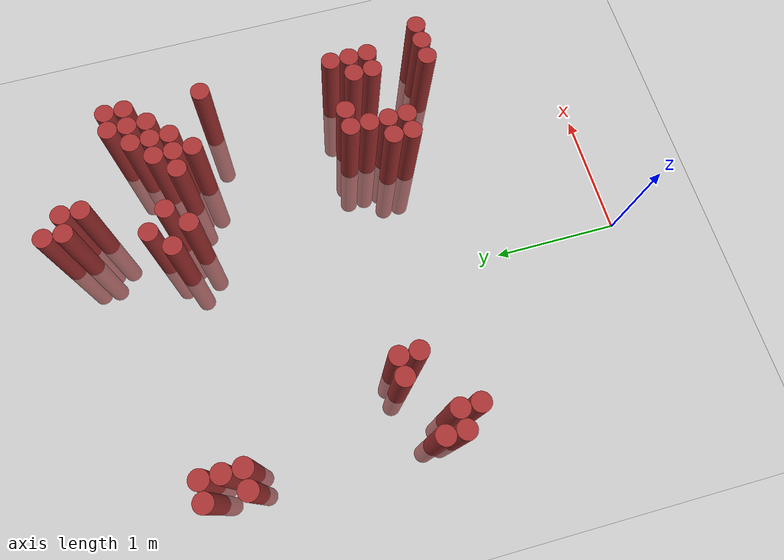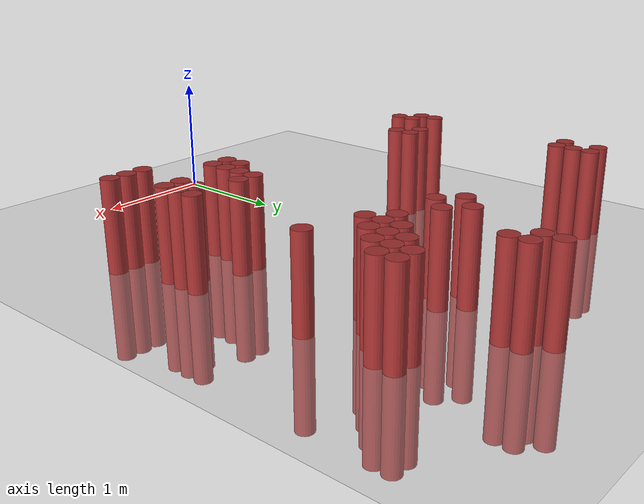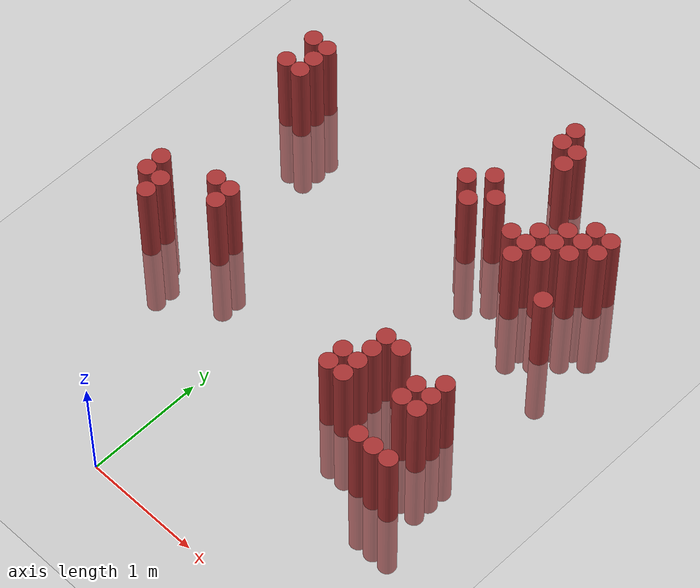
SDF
<sdf version="1.6">
 <world name="default">
  <model name="ground_plane">
   <static>1</static>
   <link name="link">
    <collision name="collision">
     <geometry><plane><normal>0 0 1</normal><size>100 100</size></plane></geometry>
     <surface><friction><ode><mu>100</mu><mu2>50</mu2></ode></friction></surface>
    </collision>
    <visual name="visual">
     <cast_shadows>0</cast_shadows>
     <geometry><plane><normal>0 0 1</normal><size>100 100</size></plane></geometry>
     <material>
      <script><uri>file://media/materials/scripts/gazebo.material</uri><name>Gazebo/Grey</name></script>
     </material>
    </visual>
   </link>
  </model>
  <model name="unit_cylinder_159">
   <static>1</static>
   <pose>-1.325000 1.825000 0.000000 0.000000 0.000000 0.000000</pose>
   <link name="link">
    <inertial>
     <mass>1</mass>
     <inertia><ixx>0.145833</ixx><ixy>0</ixy><ixz>0</ixz><iyy>0.145833</iyy><iyz>0</iyz><izz>0.125</izz></inertia>
    </inertial>
    <collision name="collision">
     <geometry><cylinder><radius>0.075000</radius><length>1.5</length></cylinder></geometry>
    </collision>
    <visual name="visual">
     <geometry><cylinder><radius>0.075000</radius><length>1.5</length></cylinder></geometry>
     <material>
      <ambient>0.648000 0.192000 0.192000 1</ambient>
      <diffuse>0.648000 0.192000 0.192000 1</diffuse>
     </material>
     <material>
      <script><name>Gazebo/Grey</name><uri>file://media/materials/scripts/gazebo.material</uri></script>
     </material>
    </visual>
   </link>
  </model>
  <model name="unit_cylinder_160">
   <static>1</static>
   <pose>-1.325000 1.975000 0.000000 0.000000 0.000000 0.000000</pose>
   <link name="link">
    <inertial>
     <mass>1</mass>
     <inertia><ixx>0.145833</ixx><ixy>0</ixy><ixz>0</ixz><iyy>0.145833</iyy><iyz>0</iyz><izz>0.125</izz></inertia>
    </inertial>
    <collision name="collision">
     <geometry><cylinder><radius>0.075000</radius><length>1.5</length></cylinder></geometry>
    </collision>
    <visual name="visual">
     <geometry><cylinder><radius>0.075000</radius><length>1.5</length></cylinder></geometry>
     <material>
      <ambient>0.648000 0.192000 0.192000 1</ambient>
      <diffuse>0.648000 0.192000 0.192000 1</diffuse>
     </material>
     <material>
      <script><name>Gazebo/Grey</name><uri>file://media/materials/scripts/gazebo.material</uri></script>
     </material>
    </visual>
   </link>
  </model>
  <model name="unit_cylinder_161">
   <static>1</static>
   <pose>-1.325000 3.325000 0.000000 0.000000 0.000000 0.000000</pose>
   <link name="link">
    <inertial>
     <mass>1</mass>
     <inertia><ixx>0.145833</ixx><ixy>0</ixy><ixz>0</ixz><iyy>0.145833</iyy><iyz>0</iyz><izz>0.125</izz></inertia>
    </inertial>
    <collision name="collision">
     <geometry><cylinder><radius>0.075000</radius><length>1.5</length></cylinder></geometry>
    </collision>
    <visual name="visual">
     <geometry><cylinder><radius>0.075000</radius><length>1.5</length></cylinder></geometry>
     <material>
      <ambient>0.648000 0.192000 0.192000 1</ambient>
      <diffuse>0.648000 0.192000 0.192000 1</diffuse>
     </material>
     <material>
      <script><name>Gazebo/Grey</name><uri>file://media/materials/scripts/gazebo.material</uri></script>
     </material>
    </visual>
   </link>
  </model>
  <model name="unit_cylinder_162">
   <static>1</static>
   <pose>-1.325000 3.625000 0.000000 0.000000 0.000000 0.000000</pose>
   <link name="link">
    <inertial>
     <mass>1</mass>
     <inertia><ixx>0.145833</ixx><ixy>0</ixy><ixz>0</ixz><iyy>0.145833</iyy><iyz>0</iyz><izz>0.125</izz></inertia>
    </inertial>
    <collision name="collision">
     <geometry><cylinder><radius>0.075000</radius><length>1.5</length></cylinder></geometry>
    </collision>
    <visual name="visual">
     <geometry><cylinder><radius>0.075000</radius><length>1.5</length></cylinder></geometry>
     <material>
      <ambient>0.648000 0.192000 0.192000 1</ambient>
      <diffuse>0.648000 0.192000 0.192000 1</diffuse>
     </material>
     <material>
      <script><name>Gazebo/Grey</name><uri>file://media/materials/scripts/gazebo.material</uri></script>
     </material>
    </visual>
   </link>
  </model>
  <model name="unit_cylinder_163">
   <static>1</static>
   <pose>-1.175000 1.675000 0.000000 0.000000 0.000000 0.000000</pose>
   <link name="link">
    <inertial>
     <mass>1</mass>
     <inertia><ixx>0.145833</ixx><ixy>0</ixy><ixz>0</ixz><iyy>0.145833</iyy><iyz>0</iyz><izz>0.125</izz></inertia>
    </inertial>
    <collision name="collision">
     <geometry><cylinder><radius>0.075000</radius><length>1.5</length></cylinder></geometry>
    </collision>
    <visual name="visual">
     <geometry><cylinder><radius>0.075000</radius><length>1.5</length></cylinder></geometry>
     <material>
      <ambient>0.648000 0.192000 0.192000 1</ambient>
      <diffuse>0.648000 0.192000 0.192000 1</diffuse>
     </material>
     <material>
      <script><name>Gazebo/Grey</name><uri>file://media/materials/scripts/gazebo.material</uri></script>
     </material>
    </visual>
   </link>
  </model>
  <model name="unit_cylinder_164">
   <static>1</static>
   <pose>-1.175000 1.825000 0.000000 0.000000 0.000000 0.000000</pose>
   <link name="link">
    <inertial>
     <mass>1</mass>
     <inertia><ixx>0.145833</ixx><ixy>0</ixy><ixz>0</ixz><iyy>0.145833</iyy><iyz>0</iyz><izz>0.125</izz></inertia>
    </inertial>
    <collision name="collision">
     <geometry><cylinder><radius>0.075000</radius><length>1.5</length></cylinder></geometry>
    </collision>
    <visual name="visual">
     <geometry><cylinder><radius>0.075000</radius><length>1.5</length></cylinder></geometry>
     <material>
      <ambient>0.648000 0.192000 0.192000 1</ambient>
      <diffuse>0.648000 0.192000 0.192000 1</diffuse>
     </material>
     <material>
      <script><name>Gazebo/Grey</name><uri>file://media/materials/scripts/gazebo.material</uri></script>
     </material>
    </visual>
   </link>
  </model>
  <model name="unit_cylinder_165">
   <static>1</static>
   <pose>-1.175000 3.325000 0.000000 0.000000 0.000000 0.000000</pose>
   <link name="link">
    <inertial>
     <mass>1</mass>
     <inertia><ixx>0.145833</ixx><ixy>0</ixy><ixz>0</ixz><iyy>0.145833</iyy><iyz>0</iyz><izz>0.125</izz></inertia>
    </inertial>
    <collision name="collision">
     <geometry><cylinder><radius>0.075000</radius><length>1.5</length></cylinder></geometry>
    </collision>
    <visual name="visual">
     <geometry><cylinder><radius>0.075000</radius><length>1.5</length></cylinder></geometry>
     <material>
      <ambient>0.648000 0.192000 0.192000 1</ambient>
      <diffuse>0.648000 0.192000 0.192000 1</diffuse>
     </material>
     <material>
      <script><name>Gazebo/Grey</name><uri>file://media/materials/scripts/gazebo.material</uri></script>
     </material>
    </visual>
   </link>
  </model>
  <model name="unit_cylinder_166">
   <static>1</static>
   <pose>-1.175000 3.475000 0.000000 0.000000 0.000000 0.000000</pose>
   <link name="link">
    <inertial>
     <mass>1</mass>
     <inertia><ixx>0.145833</ixx><ixy>0</ixy><ixz>0</ixz><iyy>0.145833</iyy><iyz>0</iyz><izz>0.125</izz></inertia>
    </inertial>
    <collision name="collision">
     <geometry><cylinder><radius>0.075000</radius><length>1.5</length></cylinder></geometry>
    </collision>
    <visual name="visual">
     <geometry><cylinder><radius>0.075000</radius><length>1.5</length></cylinder></geometry>
     <material>
      <ambient>0.648000 0.192000 0.192000 1</ambient>
      <diffuse>0.648000 0.192000 0.192000 1</diffuse>
     </material>
     <material>
      <script><name>Gazebo/Grey</name><uri>file://media/materials/scripts/gazebo.material</uri></script>
     </material>
    </visual>
   </link>
  </model>
  <model name="unit_cylinder_167">
   <static>1</static>
   <pose>-1.175000 3.625000 0.000000 0.000000 0.000000 0.000000</pose>
   <link name="link">
    <inertial>
     <mass>1</mass>
     <inertia><ixx>0.145833</ixx><ixy>0</ixy><ixz>0</ixz><iyy>0.145833</iyy><iyz>0</iyz><izz>0.125</izz></inertia>
    </inertial>
    <collision name="collision">
     <geometry><cylinder><radius>0.075000</radius><length>1.5</length></cylinder></geometry>
    </collision>
    <visual name="visual">
     <geometry><cylinder><radius>0.075000</radius><length>1.5</length></cylinder></geometry>
     <material>
      <ambient>0.648000 0.192000 0.192000 1</ambient>
      <diffuse>0.648000 0.192000 0.192000 1</diffuse>
     </material>
     <material>
      <script><name>Gazebo/Grey</name><uri>file://media/materials/scripts/gazebo.material</uri></script>
     </material>
    </visual>
   </link>
  </model>
  <model name="unit_cylinder_170">
   <static>1</static>
   <pose>-0.875000 2.125000 0.000000 0.000000 0.000000 0.000000</pose>
   <link name="link">
    <inertial>
     <mass>1</mass>
     <inertia><ixx>0.145833</ixx><ixy>0</ixy><ixz>0</ixz><iyy>0.145833</iyy><iyz>0</iyz><izz>0.125</izz></inertia>
    </inertial>
    <collision name="collision">
     <geometry><cylinder><radius>0.075000</radius><length>1.5</length></cylinder></geometry>
    </collision>
    <visual name="visual">
     <geometry><cylinder><radius>0.075000</radius><length>1.5</length></cylinder></geometry>
     <material>
      <ambient>0.648000 0.192000 0.192000 1</ambient>
      <diffuse>0.648000 0.192000 0.192000 1</diffuse>
     </material>
     <material>
      <script><name>Gazebo/Grey</name><uri>file://media/materials/scripts/gazebo.material</uri></script>
     </material>
    </visual>
   </link>
  </model>
  <model name="unit_cylinder_173">
   <static>1</static>
   <pose>-0.725000 1.975000 0.000000 0.000000 0.000000 0.000000</pose>
   <link name="link">
    <inertial>
     <mass>1</mass>
     <inertia><ixx>0.145833</ixx><ixy>0</ixy><ixz>0</ixz><iyy>0.145833</iyy><iyz>0</iyz><izz>0.125</izz></inertia>
    </inertial>
    <collision name="collision">
     <geometry><cylinder><radius>0.075000</radius><length>1.5</length></cylinder></geometry>
    </collision>
    <visual name="visual">
     <geometry><cylinder><radius>0.075000</radius><length>1.5</length></cylinder></geometry>
     <material>
      <ambient>0.648000 0.192000 0.192000 1</ambient>
      <diffuse>0.648000 0.192000 0.192000 1</diffuse>
     </material>
     <material>
      <script><name>Gazebo/Grey</name><uri>file://media/materials/scripts/gazebo.material</uri></script>
     </material>
    </visual>
   </link>
  </model>
  <model name="unit_cylinder_174">
   <static>1</static>
   <pose>-0.725000 2.125000 0.000000 0.000000 0.000000 0.000000</pose>
   <link name="link">
    <inertial>
     <mass>1</mass>
     <inertia><ixx>0.145833</ixx><ixy>0</ixy><ixz>0</ixz><iyy>0.145833</iyy><iyz>0</iyz><izz>0.125</izz></inertia>
    </inertial>
    <collision name="collision">
     <geometry><cylinder><radius>0.075000</radius><length>1.5</length></cylinder></geometry>
    </collision>
    <visual name="visual">
     <geometry><cylinder><radius>0.075000</radius><length>1.5</length></cylinder></geometry>
     <material>
      <ambient>0.648000 0.192000 0.192000 1</ambient>
      <diffuse>0.648000 0.192000 0.192000 1</diffuse>
     </material>
     <material>
      <script><name>Gazebo/Grey</name><uri>file://media/materials/scripts/gazebo.material</uri></script>
     </material>
    </visual>
   </link>
  </model>
  <model name="unit_cylinder_175">
   <static>1</static>
   <pose>0.475000 3.475000 0.000000 0.000000 0.000000 0.000000</pose>
   <link name="link">
    <inertial>
     <mass>1</mass>
     <inertia><ixx>0.145833</ixx><ixy>0</ixy><ixz>0</ixz><iyy>0.145833</iyy><iyz>0</iyz><izz>0.125</izz></inertia>
    </inertial>
    <collision name="collision">
     <geometry><cylinder><radius>0.075000</radius><length>1.5</length></cylinder></geometry>
    </collision>
    <visual name="visual">
     <geometry><cylinder><radius>0.075000</radius><length>1.5</length></cylinder></geometry>
     <material>
      <ambient>0.648000 0.192000 0.192000 1</ambient>
      <diffuse>0.648000 0.192000 0.192000 1</diffuse>
     </material>
     <material>
      <script><name>Gazebo/Grey</name><uri>file://media/materials/scripts/gazebo.material</uri></script>
     </material>
    </visual>
   </link>
  </model>
  <model name="unit_cylinder_176">
   <static>1</static>
   <pose>0.625000 3.325000 0.000000 0.000000 0.000000 0.000000</pose>
   <link name="link">
    <inertial>
     <mass>1</mass>
     <inertia><ixx>0.145833</ixx><ixy>0</ixy><ixz>0</ixz><iyy>0.145833</iyy><iyz>0</iyz><izz>0.125</izz></inertia>
    </inertial>
    <collision name="collision">
     <geometry><cylinder><radius>0.075000</radius><length>1.5</length></cylinder></geometry>
    </collision>
    <visual name="visual">
     <geometry><cylinder><radius>0.075000</radius><length>1.5</length></cylinder></geometry>
     <material>
      <ambient>0.648000 0.192000 0.192000 1</ambient>
      <diffuse>0.648000 0.192000 0.192000 1</diffuse>
     </material>
     <material>
      <script><name>Gazebo/Grey</name><uri>file://media/materials/scripts/gazebo.material</uri></script>
     </material>
    </visual>
   </link>
  </model>
  <model name="unit_cylinder_177">
   <static>1</static>
   <pose>0.625000 3.625000 0.000000 0.000000 0.000000 0.000000</pose>
   <link name="link">
    <inertial>
     <mass>1</mass>
     <inertia><ixx>0.145833</ixx><ixy>0</ixy><ixz>0</ixz><iyy>0.145833</iyy><iyz>0</iyz><izz>0.125</izz></inertia>
    </inertial>
    <collision name="collision">
     <geometry><cylinder><radius>0.075000</radius><length>1.5</length></cylinder></geometry>
    </collision>
    <visual name="visual">
     <geometry><cylinder><radius>0.075000</radius><length>1.5</length></cylinder></geometry>
     <material>
      <ambient>0.648000 0.192000 0.192000 1</ambient>
      <diffuse>0.648000 0.192000 0.192000 1</diffuse>
     </material>
     <material>
      <script><name>Gazebo/Grey</name><uri>file://media/materials/scripts/gazebo.material</uri></script>
     </material>
    </visual>
   </link>
  </model>
  <model name="unit_cylinder_180">
   <static>1</static>
   <pose>0.775000 3.475000 0.000000 0.000000 0.000000 0.000000</pose>
   <link name="link">
    <inertial>
     <mass>1</mass>
     <inertia><ixx>0.145833</ixx><ixy>0</ixy><ixz>0</ixz><iyy>0.145833</iyy><iyz>0</iyz><izz>0.125</izz></inertia>
    </inertial>
    <collision name="collision">
     <geometry><cylinder><radius>0.075000</radius><length>1.5</length></cylinder></geometry>
    </collision>
    <visual name="visual">
     <geometry><cylinder><radius>0.075000</radius><length>1.5</length></cylinder></geometry>
     <material>
      <ambient>0.648000 0.192000 0.192000 1</ambient>
      <diffuse>0.648000 0.192000 0.192000 1</diffuse>
     </material>
     <material>
      <script><name>Gazebo/Grey</name><uri>file://media/materials/scripts/gazebo.material</uri></script>
     </material>
    </visual>
   </link>
  </model>
  <model name="unit_cylinder_181">
   <static>1</static>
   <pose>0.775000 4.225000 0.000000 0.000000 0.000000 0.000000</pose>
   <link name="link">
    <inertial>
     <mass>1</mass>
     <inertia><ixx>0.145833</ixx><ixy>0</ixy><ixz>0</ixz><iyy>0.145833</iyy><iyz>0</iyz><izz>0.125</izz></inertia>
    </inertial>
    <collision name="collision">
     <geometry><cylinder><radius>0.075000</radius><length>1.5</length></cylinder></geometry>
    </collision>
    <visual name="visual">
     <geometry><cylinder><radius>0.075000</radius><length>1.5</length></cylinder></geometry>
     <material>
      <ambient>0.648000 0.192000 0.192000 1</ambient>
      <diffuse>0.648000 0.192000 0.192000 1</diffuse>
     </material>
     <material>
      <script><name>Gazebo/Grey</name><uri>file://media/materials/scripts/gazebo.material</uri></script>
     </material>
    </visual>
   </link>
  </model>
  <model name="unit_cylinder_182">
   <static>1</static>
   <pose>0.775000 4.375000 0.000000 0.000000 0.000000 0.000000</pose>
   <link name="link">
    <inertial>
     <mass>1</mass>
     <inertia><ixx>0.145833</ixx><ixy>0</ixy><ixz>0</ixz><iyy>0.145833</iyy><iyz>0</iyz><izz>0.125</izz></inertia>
    </inertial>
    <collision name="collision">
     <geometry><cylinder><radius>0.075000</radius><length>1.5</length></cylinder></geometry>
    </collision>
    <visual name="visual">
     <geometry><cylinder><radius>0.075000</radius><length>1.5</length></cylinder></geometry>
     <material>
      <ambient>0.648000 0.192000 0.192000 1</ambient>
      <diffuse>0.648000 0.192000 0.192000 1</diffuse>
     </material>
     <material>
      <script><name>Gazebo/Grey</name><uri>file://media/materials/scripts/gazebo.material</uri></script>
     </material>
    </visual>
   </link>
  </model>
  <model name="unit_cylinder_187">
   <static>1</static>
   <pose>0.925000 1.525000 0.000000 0.000000 0.000000 0.000000</pose>
   <link name="link">
    <inertial>
     <mass>1</mass>
     <inertia><ixx>0.145833</ixx><ixy>0</ixy><ixz>0</ixz><iyy>0.145833</iyy><iyz>0</iyz><izz>0.125</izz></inertia>
    </inertial>
    <collision name="collision">
     <geometry><cylinder><radius>0.075000</radius><length>1.5</length></cylinder></geometry>
    </collision>
    <visual name="visual">
     <geometry><cylinder><radius>0.075000</radius><length>1.5</length></cylinder></geometry>
     <material>
      <ambient>0.648000 0.192000 0.192000 1</ambient>
      <diffuse>0.648000 0.192000 0.192000 1</diffuse>
     </material>
     <material>
      <script><name>Gazebo/Grey</name><uri>file://media/materials/scripts/gazebo.material</uri></script>
     </material>
    </visual>
   </link>
  </model>
  <model name="unit_cylinder_188">
   <static>1</static>
   <pose>0.925000 1.675000 0.000000 0.000000 0.000000 0.000000</pose>
   <link name="link">
    <inertial>
     <mass>1</mass>
     <inertia><ixx>0.145833</ixx><ixy>0</ixy><ixz>0</ixz><iyy>0.145833</iyy><iyz>0</iyz><izz>0.125</izz></inertia>
    </inertial>
    <collision name="collision">
     <geometry><cylinder><radius>0.075000</radius><length>1.5</length></cylinder></geometry>
    </collision>
    <visual name="visual">
     <geometry><cylinder><radius>0.075000</radius><length>1.5</length></cylinder></geometry>
     <material>
      <ambient>0.648000 0.192000 0.192000 1</ambient>
      <diffuse>0.648000 0.192000 0.192000 1</diffuse>
     </material>
     <material>
      <script><name>Gazebo/Grey</name><uri>file://media/materials/scripts/gazebo.material</uri></script>
     </material>
    </visual>
   </link>
  </model>
  <model name="unit_cylinder_189">
   <static>1</static>
   <pose>0.925000 4.075000 0.000000 0.000000 0.000000 0.000000</pose>
   <link name="link">
    <inertial>
     <mass>1</mass>
     <inertia><ixx>0.145833</ixx><ixy>0</ixy><ixz>0</ixz><iyy>0.145833</iyy><iyz>0</iyz><izz>0.125</izz></inertia>
    </inertial>
    <collision name="collision">
     <geometry><cylinder><radius>0.075000</radius><length>1.5</length></cylinder></geometry>
    </collision>
    <visual name="visual">
     <geometry><cylinder><radius>0.075000</radius><length>1.5</length></cylinder></geometry>
     <material>
      <ambient>0.648000 0.192000 0.192000 1</ambient>
      <diffuse>0.648000 0.192000 0.192000 1</diffuse>
     </material>
     <material>
      <script><name>Gazebo/Grey</name><uri>file://media/materials/scripts/gazebo.material</uri></script>
     </material>
    </visual>
   </link>
  </model>
  <model name="unit_cylinder_190">
   <static>1</static>
   <pose>0.925000 4.225000 0.000000 0.000000 0.000000 0.000000</pose>
   <link name="link">
    <inertial>
     <mass>1</mass>
     <inertia><ixx>0.145833</ixx><ixy>0</ixy><ixz>0</ixz><iyy>0.145833</iyy><iyz>0</iyz><izz>0.125</izz></inertia>
    </inertial>
    <collision name="collision">
     <geometry><cylinder><radius>0.075000</radius><length>1.5</length></cylinder></geometry>
    </collision>
    <visual name="visual">
     <geometry><cylinder><radius>0.075000</radius><length>1.5</length></cylinder></geometry>
     <material>
      <ambient>0.648000 0.192000 0.192000 1</ambient>
      <diffuse>0.648000 0.192000 0.192000 1</diffuse>
     </material>
     <material>
      <script><name>Gazebo/Grey</name><uri>file://media/materials/scripts/gazebo.material</uri></script>
     </material>
    </visual>
   </link>
  </model>
  <model name="unit_cylinder_194">
   <static>1</static>
   <pose>1.075000 1.525000 0.000000 0.000000 0.000000 0.000000</pose>
   <link name="link">
    <inertial>
     <mass>1</mass>
     <inertia><ixx>0.145833</ixx><ixy>0</ixy><ixz>0</ixz><iyy>0.145833</iyy><iyz>0</iyz><izz>0.125</izz></inertia>
    </inertial>
    <collision name="collision">
     <geometry><cylinder><radius>0.075000</radius><length>1.5</length></cylinder></geometry>
    </collision>
    <visual name="visual">
     <geometry><cylinder><radius>0.075000</radius><length>1.5</length></cylinder></geometry>
     <material>
      <ambient>0.648000 0.192000 0.192000 1</ambient>
      <diffuse>0.648000 0.192000 0.192000 1</diffuse>
     </material>
     <material>
      <script><name>Gazebo/Grey</name><uri>file://media/materials/scripts/gazebo.material</uri></script>
     </material>
    </visual>
   </link>
  </model>
  <model name="unit_cylinder_195">
   <static>1</static>
   <pose>1.075000 1.675000 0.000000 0.000000 0.000000 0.000000</pose>
   <link name="link">
    <inertial>
     <mass>1</mass>
     <inertia><ixx>0.145833</ixx><ixy>0</ixy><ixz>0</ixz><iyy>0.145833</iyy><iyz>0</iyz><izz>0.125</izz></inertia>
    </inertial>
    <collision name="collision">
     <geometry><cylinder><radius>0.075000</radius><length>1.5</length></cylinder></geometry>
    </collision>
    <visual name="visual">
     <geometry><cylinder><radius>0.075000</radius><length>1.5</length></cylinder></geometry>
     <material>
      <ambient>0.648000 0.192000 0.192000 1</ambient>
      <diffuse>0.648000 0.192000 0.192000 1</diffuse>
     </material>
     <material>
      <script><name>Gazebo/Grey</name><uri>file://media/materials/scripts/gazebo.material</uri></script>
     </material>
    </visual>
   </link>
  </model>
  <model name="unit_cylinder_196">
   <static>1</static>
   <pose>1.075000 1.825000 0.000000 0.000000 0.000000 0.000000</pose>
   <link name="link">
    <inertial>
     <mass>1</mass>
     <inertia><ixx>0.145833</ixx><ixy>0</ixy><ixz>0</ixz><iyy>0.145833</iyy><iyz>0</iyz><izz>0.125</izz></inertia>
    </inertial>
    <collision name="collision">
     <geometry><cylinder><radius>0.075000</radius><length>1.5</length></cylinder></geometry>
    </collision>
    <visual name="visual">
     <geometry><cylinder><radius>0.075000</radius><length>1.5</length></cylinder></geometry>
     <material>
      <ambient>0.648000 0.192000 0.192000 1</ambient>
      <diffuse>0.648000 0.192000 0.192000 1</diffuse>
     </material>
     <material>
      <script><name>Gazebo/Grey</name><uri>file://media/materials/scripts/gazebo.material</uri></script>
     </material>
    </visual>
   </link>
  </model>
  <model name="unit_cylinder_197">
   <static>1</static>
   <pose>1.075000 1.975000 0.000000 0.000000 0.000000 0.000000</pose>
   <link name="link">
    <inertial>
     <mass>1</mass>
     <inertia><ixx>0.145833</ixx><ixy>0</ixy><ixz>0</ixz><iyy>0.145833</iyy><iyz>0</iyz><izz>0.125</izz></inertia>
    </inertial>
    <collision name="collision">
     <geometry><cylinder><radius>0.075000</radius><length>1.5</length></cylinder></geometry>
    </collision>
    <visual name="visual">
     <geometry><cylinder><radius>0.075000</radius><length>1.5</length></cylinder></geometry>
     <material>
      <ambient>0.648000 0.192000 0.192000 1</ambient>
      <diffuse>0.648000 0.192000 0.192000 1</diffuse>
     </material>
     <material>
      <script><name>Gazebo/Grey</name><uri>file://media/materials/scripts/gazebo.material</uri></script>
     </material>
    </visual>
   </link>
  </model>
  <model name="unit_cylinder_198">
   <static>1</static>
   <pose>1.075000 3.325000 0.000000 0.000000 0.000000 0.000000</pose>
   <link name="link">
    <inertial>
     <mass>1</mass>
     <inertia><ixx>0.145833</ixx><ixy>0</ixy><ixz>0</ixz><iyy>0.145833</iyy><iyz>0</iyz><izz>0.125</izz></inertia>
    </inertial>
    <collision name="collision">
     <geometry><cylinder><radius>0.075000</radius><length>1.5</length></cylinder></geometry>
    </collision>
    <visual name="visual">
     <geometry><cylinder><radius>0.075000</radius><length>1.5</length></cylinder></geometry>
     <material>
      <ambient>0.648000 0.192000 0.192000 1</ambient>
      <diffuse>0.648000 0.192000 0.192000 1</diffuse>
     </material>
     <material>
      <script><name>Gazebo/Grey</name><uri>file://media/materials/scripts/gazebo.material</uri></script>
     </material>
    </visual>
   </link>
  </model>
  <model name="unit_cylinder_201">
   <static>1</static>
   <pose>1.225000 1.975000 0.000000 0.000000 0.000000 0.000000</pose>
   <link name="link">
    <inertial>
     <mass>1</mass>
     <inertia><ixx>0.145833</ixx><ixy>0</ixy><ixz>0</ixz><iyy>0.145833</iyy><iyz>0</iyz><izz>0.125</izz></inertia>
    </inertial>
    <collision name="collision">
     <geometry><cylinder><radius>0.075000</radius><length>1.5</length></cylinder></geometry>
    </collision>
    <visual name="visual">
     <geometry><cylinder><radius>0.075000</radius><length>1.5</length></cylinder></geometry>
     <material>
      <ambient>0.648000 0.192000 0.192000 1</ambient>
      <diffuse>0.648000 0.192000 0.192000 1</diffuse>
     </material>
     <material>
      <script><name>Gazebo/Grey</name><uri>file://media/materials/scripts/gazebo.material</uri></script>
     </material>
    </visual>
   </link>
  </model>
  <model name="unit_cylinder_202">
   <static>1</static>
   <pose>1.225000 3.175000 0.000000 0.000000 0.000000 0.000000</pose>
   <link name="link">
    <inertial>
     <mass>1</mass>
     <inertia><ixx>0.145833</ixx><ixy>0</ixy><ixz>0</ixz><iyy>0.145833</iyy><iyz>0</iyz><izz>0.125</izz></inertia>
    </inertial>
    <collision name="collision">
     <geometry><cylinder><radius>0.075000</radius><length>1.5</length></cylinder></geometry>
    </collision>
    <visual name="visual">
     <geometry><cylinder><radius>0.075000</radius><length>1.5</length></cylinder></geometry>
     <material>
      <ambient>0.648000 0.192000 0.192000 1</ambient>
      <diffuse>0.648000 0.192000 0.192000 1</diffuse>
     </material>
     <material>
      <script><name>Gazebo/Grey</name><uri>file://media/materials/scripts/gazebo.material</uri></script>
     </material>
    </visual>
   </link>
  </model>
  <model name="unit_cylinder_203">
   <static>1</static>
   <pose>1.225000 3.325000 0.000000 0.000000 0.000000 0.000000</pose>
   <link name="link">
    <inertial>
     <mass>1</mass>
     <inertia><ixx>0.145833</ixx><ixy>0</ixy><ixz>0</ixz><iyy>0.145833</iyy><iyz>0</iyz><izz>0.125</izz></inertia>
    </inertial>
    <collision name="collision">
     <geometry><cylinder><radius>0.075000</radius><length>1.5</length></cylinder></geometry>
    </collision>
    <visual name="visual">
     <geometry><cylinder><radius>0.075000</radius><length>1.5</length></cylinder></geometry>
     <material>
      <ambient>0.648000 0.192000 0.192000 1</ambient>
      <diffuse>0.648000 0.192000 0.192000 1</diffuse>
     </material>
     <material>
      <script><name>Gazebo/Grey</name><uri>file://media/materials/scripts/gazebo.material</uri></script>
     </material>
    </visual>
   </link>
  </model>
  <model name="unit_cylinder_204">
   <static>1</static>
   <pose>1.225000 3.475000 0.000000 0.000000 0.000000 0.000000</pose>
   <link name="link">
    <inertial>
     <mass>1</mass>
     <inertia><ixx>0.145833</ixx><ixy>0</ixy><ixz>0</ixz><iyy>0.145833</iyy><iyz>0</iyz><izz>0.125</izz></inertia>
    </inertial>
    <collision name="collision">
     <geometry><cylinder><radius>0.075000</radius><length>1.5</length></cylinder></geometry>
    </collision>
    <visual name="visual">
     <geometry><cylinder><radius>0.075000</radius><length>1.5</length></cylinder></geometry>
     <material>
      <ambient>0.648000 0.192000 0.192000 1</ambient>
      <diffuse>0.648000 0.192000 0.192000 1</diffuse>
     </material>
     <material>
      <script><name>Gazebo/Grey</name><uri>file://media/materials/scripts/gazebo.material</uri></script>
     </material>
    </visual>
   </link>
  </model>
  <model name="unit_cylinder_206">
   <static>1</static>
   <pose>1.375000 3.325000 0.000000 0.000000 0.000000 0.000000</pose>
   <link name="link">
    <inertial>
     <mass>1</mass>
     <inertia><ixx>0.145833</ixx><ixy>0</ixy><ixz>0</ixz><iyy>0.145833</iyy><iyz>0</iyz><izz>0.125</izz></inertia>
    </inertial>
    <collision name="collision">
     <geometry><cylinder><radius>0.075000</radius><length>1.5</length></cylinder></geometry>
    </collision>
    <visual name="visual">
     <geometry><cylinder><radius>0.075000</radius><length>1.5</length></cylinder></geometry>
     <material>
      <ambient>0.648000 0.192000 0.192000 1</ambient>
      <diffuse>0.648000 0.192000 0.192000 1</diffuse>
     </material>
     <material>
      <script><name>Gazebo/Grey</name><uri>file://media/materials/scripts/gazebo.material</uri></script>
     </material>
    </visual>
   </link>
  </model>
  <model name="unit_cylinder_207">
   <static>1</static>
   <pose>1.375000 3.475000 0.000000 0.000000 0.000000 0.000000</pose>
   <link name="link">
    <inertial>
     <mass>1</mass>
     <inertia><ixx>0.145833</ixx><ixy>0</ixy><ixz>0</ixz><iyy>0.145833</iyy><iyz>0</iyz><izz>0.125</izz></inertia>
    </inertial>
    <collision name="collision">
     <geometry><cylinder><radius>0.075000</radius><length>1.5</length></cylinder></geometry>
    </collision>
    <visual name="visual">
     <geometry><cylinder><radius>0.075000</radius><length>1.5</length></cylinder></geometry>
     <material>
      <ambient>0.648000 0.192000 0.192000 1</ambient>
      <diffuse>0.648000 0.192000 0.192000 1</diffuse>
     </material>
     <material>
      <script><name>Gazebo/Grey</name><uri>file://media/materials/scripts/gazebo.material</uri></script>
     </material>
    </visual>
   </link>
  </model>
  <model name="unit_cylinder_208">
   <static>1</static>
   <pose>1.375000 3.625000 0.000000 0.000000 0.000000 0.000000</pose>
   <link name="link">
    <inertial>
     <mass>1</mass>
     <inertia><ixx>0.145833</ixx><ixy>0</ixy><ixz>0</ixz><iyy>0.145833</iyy><iyz>0</iyz><izz>0.125</izz></inertia>
    </inertial>
    <collision name="collision">
     <geometry><cylinder><radius>0.075000</radius><length>1.5</length></cylinder></geometry>
    </collision>
    <visual name="visual">
     <geometry><cylinder><radius>0.075000</radius><length>1.5</length></cylinder></geometry>
     <material>
      <ambient>0.648000 0.192000 0.192000 1</ambient>
      <diffuse>0.648000 0.192000 0.192000 1</diffuse>
     </material>
     <material>
      <script><name>Gazebo/Grey</name><uri>file://media/materials/scripts/gazebo.material</uri></script>
     </material>
    </visual>
   </link>
  </model>
  <model name="unit_cylinder_210">
   <static>1</static>
   <pose>1.525000 1.225000 0.000000 0.000000 0.000000 0.000000</pose>
   <link name="link">
    <inertial>
     <mass>1</mass>
     <inertia><ixx>0.145833</ixx><ixy>0</ixy><ixz>0</ixz><iyy>0.145833</iyy><iyz>0</iyz><izz>0.125</izz></inertia>
    </inertial>
    <collision name="collision">
     <geometry><cylinder><radius>0.075000</radius><length>1.5</length></cylinder></geometry>
    </collision>
    <visual name="visual">
     <geometry><cylinder><radius>0.075000</radius><length>1.5</length></cylinder></geometry>
     <material>
      <ambient>0.648000 0.192000 0.192000 1</ambient>
      <diffuse>0.648000 0.192000 0.192000 1</diffuse>
     </material>
     <material>
      <script><name>Gazebo/Grey</name><uri>file://media/materials/scripts/gazebo.material</uri></script>
     </material>
    </visual>
   </link>
  </model>
  <model name="unit_cylinder_211">
   <static>1</static>
   <pose>1.525000 1.675000 0.000000 0.000000 0.000000 0.000000</pose>
   <link name="link">
    <inertial>
     <mass>1</mass>
     <inertia><ixx>0.145833</ixx><ixy>0</ixy><ixz>0</ixz><iyy>0.145833</iyy><iyz>0</iyz><izz>0.125</izz></inertia>
    </inertial>
    <collision name="collision">
     <geometry><cylinder><radius>0.075000</radius><length>1.5</length></cylinder></geometry>
    </collision>
    <visual name="visual">
     <geometry><cylinder><radius>0.075000</radius><length>1.5</length></cylinder></geometry>
     <material>
      <ambient>0.648000 0.192000 0.192000 1</ambient>
      <diffuse>0.648000 0.192000 0.192000 1</diffuse>
     </material>
     <material>
      <script><name>Gazebo/Grey</name><uri>file://media/materials/scripts/gazebo.material</uri></script>
     </material>
    </visual>
   </link>
  </model>
  <model name="unit_cylinder_212">
   <static>1</static>
   <pose>1.525000 1.825000 0.000000 0.000000 0.000000 0.000000</pose>
   <link name="link">
    <inertial>
     <mass>1</mass>
     <inertia><ixx>0.145833</ixx><ixy>0</ixy><ixz>0</ixz><iyy>0.145833</iyy><iyz>0</iyz><izz>0.125</izz></inertia>
    </inertial>
    <collision name="collision">
     <geometry><cylinder><radius>0.075000</radius><length>1.5</length></cylinder></geometry>
    </collision>
    <visual name="visual">
     <geometry><cylinder><radius>0.075000</radius><length>1.5</length></cylinder></geometry>
     <material>
      <ambient>0.648000 0.192000 0.192000 1</ambient>
      <diffuse>0.648000 0.192000 0.192000 1</diffuse>
     </material>
     <material>
      <script><name>Gazebo/Grey</name><uri>file://media/materials/scripts/gazebo.material</uri></script>
     </material>
    </visual>
   </link>
  </model>
  <model name="unit_cylinder_213">
   <static>1</static>
   <pose>1.525000 3.475000 0.000000 0.000000 0.000000 0.000000</pose>
   <link name="link">
    <inertial>
     <mass>1</mass>
     <inertia><ixx>0.145833</ixx><ixy>0</ixy><ixz>0</ixz><iyy>0.145833</iyy><iyz>0</iyz><izz>0.125</izz></inertia>
    </inertial>
    <collision name="collision">
     <geometry><cylinder><radius>0.075000</radius><length>1.5</length></cylinder></geometry>
    </collision>
    <visual name="visual">
     <geometry><cylinder><radius>0.075000</radius><length>1.5</length></cylinder></geometry>
     <material>
      <ambient>0.648000 0.192000 0.192000 1</ambient>
      <diffuse>0.648000 0.192000 0.192000 1</diffuse>
     </material>
     <material>
      <script><name>Gazebo/Grey</name><uri>file://media/materials/scripts/gazebo.material</uri></script>
     </material>
    </visual>
   </link>
  </model>
  <model name="unit_cylinder_214">
   <static>1</static>
   <pose>1.525000 3.625000 0.000000 0.000000 0.000000 0.000000</pose>
   <link name="link">
    <inertial>
     <mass>1</mass>
     <inertia><ixx>0.145833</ixx><ixy>0</ixy><ixz>0</ixz><iyy>0.145833</iyy><iyz>0</iyz><izz>0.125</izz></inertia>
    </inertial>
    <collision name="collision">
     <geometry><cylinder><radius>0.075000</radius><length>1.5</length></cylinder></geometry>
    </collision>
    <visual name="visual">
     <geometry><cylinder><radius>0.075000</radius><length>1.5</length></cylinder></geometry>
     <material>
      <ambient>0.648000 0.192000 0.192000 1</ambient>
      <diffuse>0.648000 0.192000 0.192000 1</diffuse>
     </material>
     <material>
      <script><name>Gazebo/Grey</name><uri>file://media/materials/scripts/gazebo.material</uri></script>
     </material>
    </visual>
   </link>
  </model>
  <model name="unit_cylinder_215">
   <static>1</static>
   <pose>1.525000 3.775000 0.000000 0.000000 0.000000 0.000000</pose>
   <link name="link">
    <inertial>
     <mass>1</mass>
     <inertia><ixx>0.145833</ixx><ixy>0</ixy><ixz>0</ixz><iyy>0.145833</iyy><iyz>0</iyz><izz>0.125</izz></inertia>
    </inertial>
    <collision name="collision">
     <geometry><cylinder><radius>0.075000</radius><length>1.5</length></cylinder></geometry>
    </collision>
    <visual name="visual">
     <geometry><cylinder><radius>0.075000</radius><length>1.5</length></cylinder></geometry>
     <material>
      <ambient>0.648000 0.192000 0.192000 1</ambient>
      <diffuse>0.648000 0.192000 0.192000 1</diffuse>
     </material>
     <material>
      <script><name>Gazebo/Grey</name><uri>file://media/materials/scripts/gazebo.material</uri></script>
     </material>
    </visual>
   </link>
  </model>
  <model name="unit_cylinder_218">
   <static>1</static>
   <pose>1.675000 1.225000 0.000000 0.000000 0.000000 0.000000</pose>
   <link name="link">
    <inertial>
     <mass>1</mass>
     <inertia><ixx>0.145833</ixx><ixy>0</ixy><ixz>0</ixz><iyy>0.145833</iyy><iyz>0</iyz><izz>0.125</izz></inertia>
    </inertial>
    <collision name="collision">
     <geometry><cylinder><radius>0.075000</radius><length>1.5</length></cylinder></geometry>
    </collision>
    <visual name="visual">
     <geometry><cylinder><radius>0.075000</radius><length>1.5</length></cylinder></geometry>
     <material>
      <ambient>0.648000 0.192000 0.192000 1</ambient>
      <diffuse>0.648000 0.192000 0.192000 1</diffuse>
     </material>
     <material>
      <script><name>Gazebo/Grey</name><uri>file://media/materials/scripts/gazebo.material</uri></script>
     </material>
    </visual>
   </link>
  </model>
  <model name="unit_cylinder_219">
   <static>1</static>
   <pose>1.675000 1.675000 0.000000 0.000000 0.000000 0.000000</pose>
   <link name="link">
    <inertial>
     <mass>1</mass>
     <inertia><ixx>0.145833</ixx><ixy>0</ixy><ixz>0</ixz><iyy>0.145833</iyy><iyz>0</iyz><izz>0.125</izz></inertia>
    </inertial>
    <collision name="collision">
     <geometry><cylinder><radius>0.075000</radius><length>1.5</length></cylinder></geometry>
    </collision>
    <visual name="visual">
     <geometry><cylinder><radius>0.075000</radius><length>1.5</length></cylinder></geometry>
     <material>
      <ambient>0.648000 0.192000 0.192000 1</ambient>
      <diffuse>0.648000 0.192000 0.192000 1</diffuse>
     </material>
     <material>
      <script><name>Gazebo/Grey</name><uri>file://media/materials/scripts/gazebo.material</uri></script>
     </material>
    </visual>
   </link>
  </model>
  <model name="unit_cylinder_220">
   <static>1</static>
   <pose>1.675000 1.825000 0.000000 0.000000 0.000000 0.000000</pose>
   <link name="link">
    <inertial>
     <mass>1</mass>
     <inertia><ixx>0.145833</ixx><ixy>0</ixy><ixz>0</ixz><iyy>0.145833</iyy><iyz>0</iyz><izz>0.125</izz></inertia>
    </inertial>
    <collision name="collision">
     <geometry><cylinder><radius>0.075000</radius><length>1.5</length></cylinder></geometry>
    </collision>
    <visual name="visual">
     <geometry><cylinder><radius>0.075000</radius><length>1.5</length></cylinder></geometry>
     <material>
      <ambient>0.648000 0.192000 0.192000 1</ambient>
      <diffuse>0.648000 0.192000 0.192000 1</diffuse>
     </material>
     <material>
      <script><name>Gazebo/Grey</name><uri>file://media/materials/scripts/gazebo.material</uri></script>
     </material>
    </visual>
   </link>
  </model>
  <model name="unit_cylinder_221">
   <static>1</static>
   <pose>1.675000 1.975000 0.000000 0.000000 0.000000 0.000000</pose>
   <link name="link">
    <inertial>
     <mass>1</mass>
     <inertia><ixx>0.145833</ixx><ixy>0</ixy><ixz>0</ixz><iyy>0.145833</iyy><iyz>0</iyz><izz>0.125</izz></inertia>
    </inertial>
    <collision name="collision">
     <geometry><cylinder><radius>0.075000</radius><length>1.5</length></cylinder></geometry>
    </collision>
    <visual name="visual">
     <geometry><cylinder><radius>0.075000</radius><length>1.5</length></cylinder></geometry>
     <material>
      <ambient>0.648000 0.192000 0.192000 1</ambient>
      <diffuse>0.648000 0.192000 0.192000 1</diffuse>
     </material>
     <material>
      <script><name>Gazebo/Grey</name><uri>file://media/materials/scripts/gazebo.material</uri></script>
     </material>
    </visual>
   </link>
  </model>
  <model name="unit_cylinder_222">
   <static>1</static>
   <pose>1.675000 3.025000 0.000000 0.000000 0.000000 0.000000</pose>
   <link name="link">
    <inertial>
     <mass>1</mass>
     <inertia><ixx>0.145833</ixx><ixy>0</ixy><ixz>0</ixz><iyy>0.145833</iyy><iyz>0</iyz><izz>0.125</izz></inertia>
    </inertial>
    <collision name="collision">
     <geometry><cylinder><radius>0.075000</radius><length>1.5</length></cylinder></geometry>
    </collision>
    <visual name="visual">
     <geometry><cylinder><radius>0.075000</radius><length>1.5</length></cylinder></geometry>
     <material>
      <ambient>0.648000 0.192000 0.192000 1</ambient>
      <diffuse>0.648000 0.192000 0.192000 1</diffuse>
     </material>
     <material>
      <script><name>Gazebo/Grey</name><uri>file://media/materials/scripts/gazebo.material</uri></script>
     </material>
    </visual>
   </link>
  </model>
  <model name="unit_cylinder_223">
   <static>1</static>
   <pose>1.675000 3.625000 0.000000 0.000000 0.000000 0.000000</pose>
   <link name="link">
    <inertial>
     <mass>1</mass>
     <inertia><ixx>0.145833</ixx><ixy>0</ixy><ixz>0</ixz><iyy>0.145833</iyy><iyz>0</iyz><izz>0.125</izz></inertia>
    </inertial>
    <collision name="collision">
     <geometry><cylinder><radius>0.075000</radius><length>1.5</length></cylinder></geometry>
    </collision>
    <visual name="visual">
     <geometry><cylinder><radius>0.075000</radius><length>1.5</length></cylinder></geometry>
     <material>
      <ambient>0.648000 0.192000 0.192000 1</ambient>
      <diffuse>0.648000 0.192000 0.192000 1</diffuse>
     </material>
     <material>
      <script><name>Gazebo/Grey</name><uri>file://media/materials/scripts/gazebo.material</uri></script>
     </material>
    </visual>
   </link>
  </model>
  <model name="unit_cylinder_224">
   <static>1</static>
   <pose>1.675000 3.775000 0.000000 0.000000 0.000000 0.000000</pose>
   <link name="link">
    <inertial>
     <mass>1</mass>
     <inertia><ixx>0.145833</ixx><ixy>0</ixy><ixz>0</ixz><iyy>0.145833</iyy><iyz>0</iyz><izz>0.125</izz></inertia>
    </inertial>
    <collision name="collision">
     <geometry><cylinder><radius>0.075000</radius><length>1.5</length></cylinder></geometry>
    </collision>
    <visual name="visual">
     <geometry><cylinder><radius>0.075000</radius><length>1.5</length></cylinder></geometry>
     <material>
      <ambient>0.648000 0.192000 0.192000 1</ambient>
      <diffuse>0.648000 0.192000 0.192000 1</diffuse>
     </material>
     <material>
      <script><name>Gazebo/Grey</name><uri>file://media/materials/scripts/gazebo.material</uri></script>
     </material>
    </visual>
   </link>
  </model>
  <model name="unit_cylinder_230">
   <static>1</static>
   <pose>1.825000 1.225000 0.000000 0.000000 0.000000 0.000000</pose>
   <link name="link">
    <inertial>
     <mass>1</mass>
     <inertia><ixx>0.145833</ixx><ixy>0</ixy><ixz>0</ixz><iyy>0.145833</iyy><iyz>0</iyz><izz>0.125</izz></inertia>
    </inertial>
    <collision name="collision">
     <geometry><cylinder><radius>0.075000</radius><length>1.5</length></cylinder></geometry>
    </collision>
    <visual name="visual">
     <geometry><cylinder><radius>0.075000</radius><length>1.5</length></cylinder></geometry>
     <material>
      <ambient>0.648000 0.192000 0.192000 1</ambient>
      <diffuse>0.648000 0.192000 0.192000 1</diffuse>
     </material>
     <material>
      <script><name>Gazebo/Grey</name><uri>file://media/materials/scripts/gazebo.material</uri></script>
     </material>
    </visual>
   </link>
  </model>
 </world>
</sdf>
